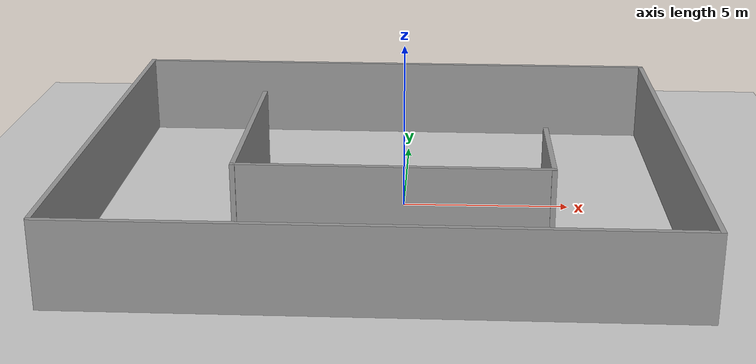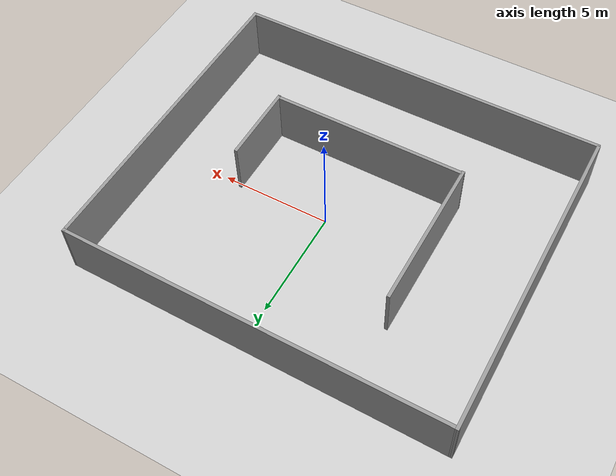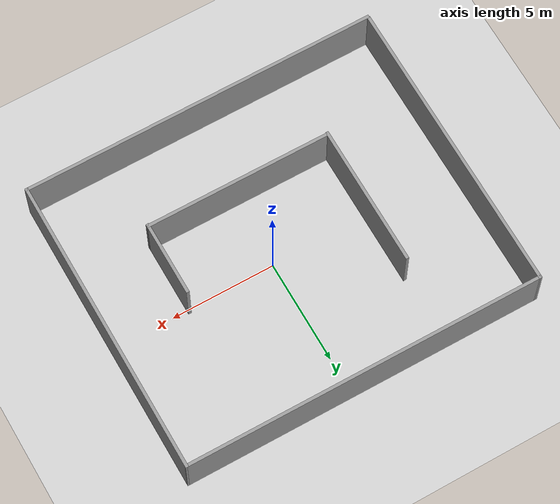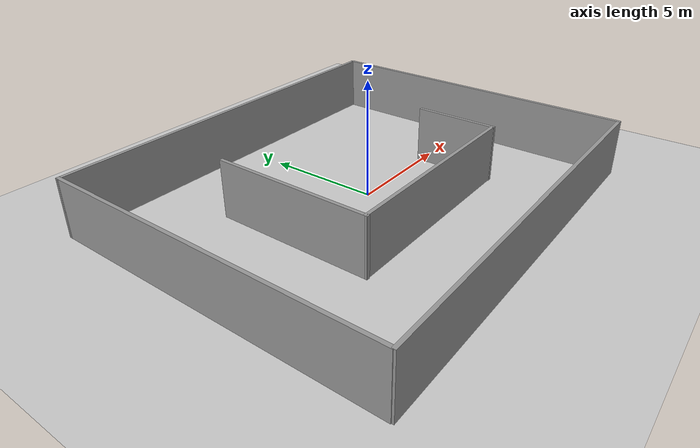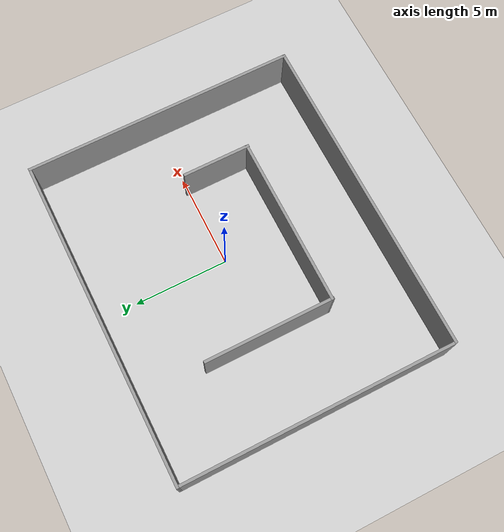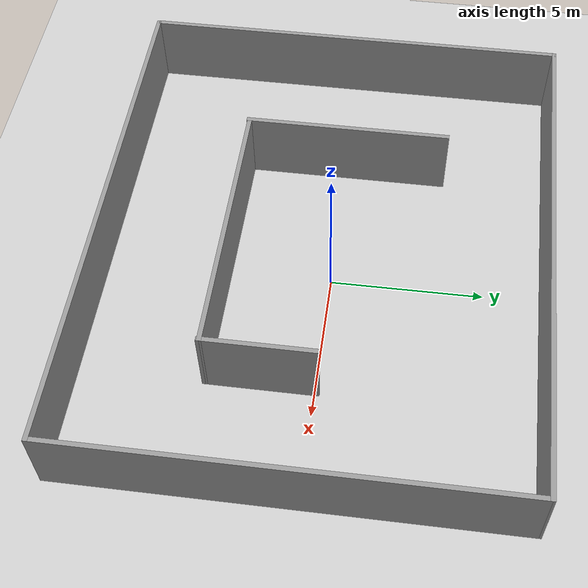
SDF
<sdf version="1.7">
 <world name="default">
  <light name="sun" type="directional">
   <pose>0 0 10 0 -0 0</pose>
   <diffuse>0.8 0.8 0.8 1</diffuse>
   <specular>0.2 0.2 0.2 1</specular>
   <attenuation>
    <range>1000</range>
    <constant>0.9</constant>
    <linear>0.01</linear>
    <quadratic>0.001</quadratic>
   </attenuation>
   <direction>-0.5 0.1 -0.9</direction>
   <spot><inner_angle>0</inner_angle><outer_angle>0</outer_angle><falloff>0</falloff></spot>
  </light>
  <model name="ground_plane">
   <static>1</static>
   <link name="link">
    <collision name="collision">
     <geometry><plane><normal>0 0 1</normal><size>100 100</size></plane></geometry>
     <surface>
      <contact><collide_bitmask>65535</collide_bitmask></contact>
      <friction><ode><mu>100</mu><mu2>50</mu2></ode></friction>
     </surface>
    </collision>
    <visual name="visual">
     <cast_shadows>0</cast_shadows>
     <geometry><plane><normal>0 0 1</normal><size>100 100</size></plane></geometry>
     <material>
      <script><uri>file://media/materials/scripts/gazebo.material</uri><name>Gazebo/Grey</name></script>
     </material>
    </visual>
   </link>
  </model>
  <gravity>0 0 -9.8</gravity>
  <magnetic_field>6e-06 2.3e-05 -4.2e-05</magnetic_field>
  <atmosphere type="adiabatic"/>
  <physics type="ode">
   <max_step_size>0.001</max_step_size>
   <real_time_factor>1</real_time_factor>
   <real_time_update_rate>1000</real_time_update_rate>
  </physics>
  <scene><ambient>0.4 0.4 0.4 1</ambient><background>0.7 0.7 0.7 1</background><shadows>1</shadows></scene>
  <spherical_coordinates>
   <surface_model>EARTH_WGS84</surface_model>
   <latitude_deg>0</latitude_deg>
   <longitude_deg>0</longitude_deg>
   <elevation>0</elevation>
   <heading_deg>0</heading_deg>
  </spherical_coordinates>
  <model name="tp_ros">
   <pose>-0.569452 -0.259268 0 0 -0 0</pose>
   <link name="Wall_10">
    <collision name="Wall_10_Collision">
     <geometry><box><size>14.5 0.15 2.5</size></box></geometry>
     <pose>0 0 1.25 0 -0 0</pose>
    </collision>
    <visual name="Wall_10_Visual">
     <pose>0 0 1.25 0 -0 0</pose>
     <geometry><box><size>14.5 0.15 2.5</size></box></geometry>
     <material>
      <script><uri>file://media/materials/scripts/gazebo.material</uri><name>Gazebo/Grey</name></script>
      <ambient>1 1 1 1</ambient>
     </material>
     <meta><layer>0</layer></meta>
    </visual>
    <pose>-8.56471 0.041255 0 0 -0 1.5708</pose>
   </link>
   <link name="Wall_15">
    <collision name="Wall_15_Collision">
     <geometry><box><size>17.25 0.15 2.5</size></box></geometry>
     <pose>0 0 1.25 0 -0 0</pose>
    </collision>
    <visual name="Wall_15_Visual">
     <pose>0 0 1.25 0 -0 0</pose>
     <geometry><box><size>17.25 0.15 2.5</size></box></geometry>
     <material>
      <script><uri>file://media/materials/scripts/gazebo.material</uri><name>Gazebo/Grey</name></script>
      <ambient>1 1 1 1</ambient>
     </material>
     <meta><layer>0</layer></meta>
    </visual>
    <pose>0.014706 -7.21662 0 0 -0 0</pose>
   </link>
   <link name="Wall_17">
    <collision name="Wall_17_Collision">
     <geometry><box><size>14.5 0.15 2.5</size></box></geometry>
     <pose>0 0 1.25 0 -0 0</pose>
    </collision>
    <visual name="Wall_17_Visual">
     <pose>0 0 1.25 0 -0 0</pose>
     <geometry><box><size>14.5 0.15 2.5</size></box></geometry>
     <material>
      <script><uri>file://media/materials/scripts/gazebo.material</uri><name>Gazebo/Grey</name></script>
      <ambient>1 1 1 1</ambient>
     </material>
     <meta><layer>0</layer></meta>
    </visual>
    <pose>8.56471 -0.041616 0 0 -0 1.5708</pose>
   </link>
   <link name="Wall_18">
    <collision name="Wall_18_Collision">
     <geometry><box><size>17.2796 0.15 2.5</size></box></geometry>
     <pose>0 0 1.25 0 -0 0</pose>
    </collision>
    <visual name="Wall_18_Visual">
     <pose>0 0 1.25 0 -0 0</pose>
     <geometry><box><size>17.2796 0.15 2.5</size></box></geometry>
     <material>
      <script><uri>file://media/materials/scripts/gazebo.material</uri><name>Gazebo/Grey</name></script>
      <ambient>1 1 1 1</ambient>
     </material>
     <meta><layer>0</layer></meta>
    </visual>
    <pose>-0 7.17482 0 0 -0 3.13675</pose>
   </link>
   <link name="Wall_20">
    <collision name="Wall_20_Collision">
     <geometry><box><size>6.89767 0.15 2.5</size></box></geometry>
     <pose>0 0 1.25 0 -0 0</pose>
    </collision>
    <visual name="Wall_20_Visual">
     <pose>0 0 1.25 0 -0 0</pose>
     <geometry><box><size>6.89767 0.15 2.5</size></box></geometry>
     <material>
      <script><uri>file://media/materials/scripts/gazebo.material</uri><name>Gazebo/Grey</name></script>
      <ambient>1 1 1 1</ambient>
     </material>
     <meta><layer>0</layer></meta>
    </visual>
    <pose>-4.09792 0.255119 0 0 -0 -1.5708</pose>
   </link>
   <link name="Wall_21">
    <collision name="Wall_21_Collision">
     <geometry><box><size>9.05175 0.15 2.5</size></box></geometry>
     <pose>0 0 1.25 0 -0 0</pose>
    </collision>
    <visual name="Wall_21_Visual">
     <pose>0 0 1.25 0 -0 0</pose>
     <geometry><box><size>9.05175 0.15 2.5</size></box></geometry>
     <material>
      <script><uri>file://media/materials/scripts/gazebo.material</uri><name>Gazebo/Grey</name></script>
      <ambient>1 1 1 1</ambient>
     </material>
     <meta><layer>0</layer></meta>
    </visual>
    <pose>0.352933 -3.10342 0 0 -0 -0.003436</pose>
   </link>
   <link name="Wall_25">
    <collision name="Wall_25_Collision">
     <geometry><box><size>3.64767 0.15 2.5</size></box></geometry>
     <pose>0 0 1.25 0 -0 0</pose>
    </collision>
    <visual name="Wall_25_Visual">
     <pose>0 0 1.25 0 -0 0</pose>
     <geometry><box><size>3.64767 0.15 2.5</size></box></geometry>
     <material>
      <script><uri>file://media/materials/scripts/gazebo.material</uri><name>Gazebo/Grey</name></script>
      <ambient>1 1 1 1</ambient>
     </material>
     <meta><layer>0</layer></meta>
    </visual>
    <pose>4.80379 -1.40047 0 0 -0 1.5708</pose>
   </link>
   <static>1</static>
  </model>
 </world>
</sdf>
